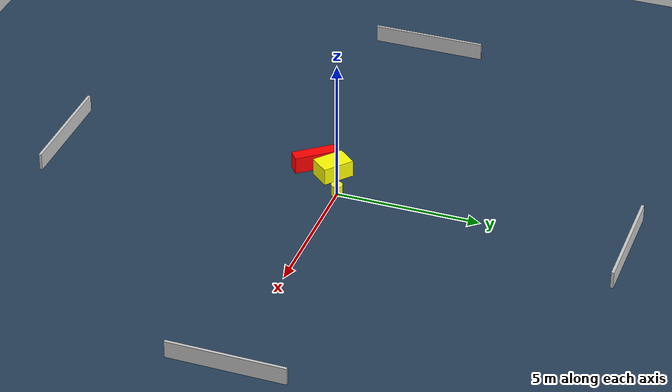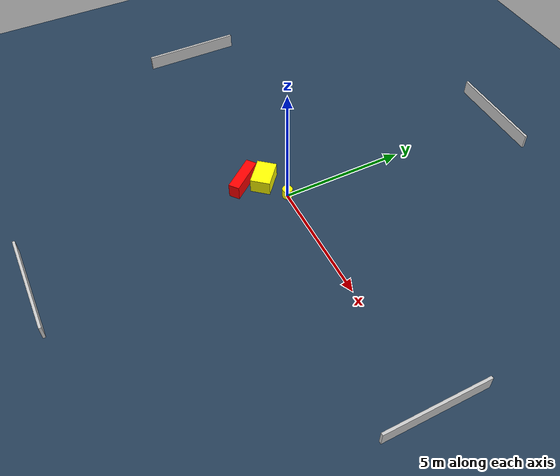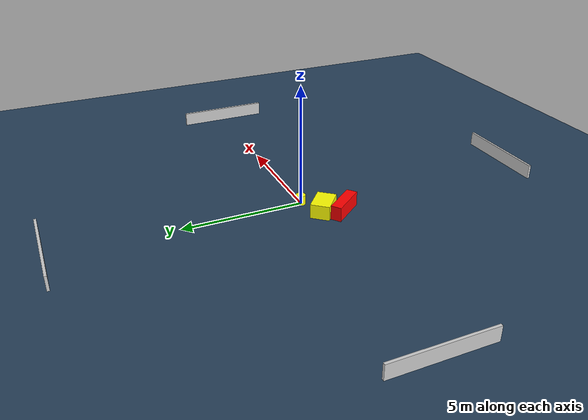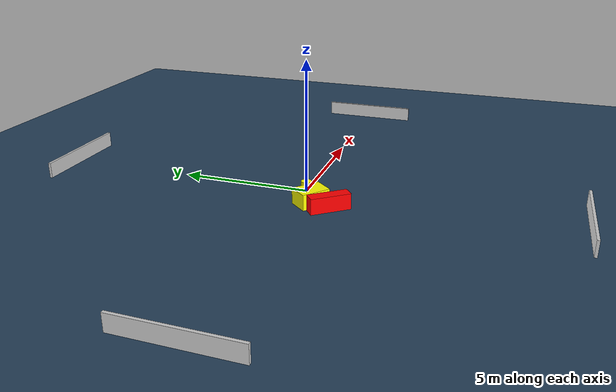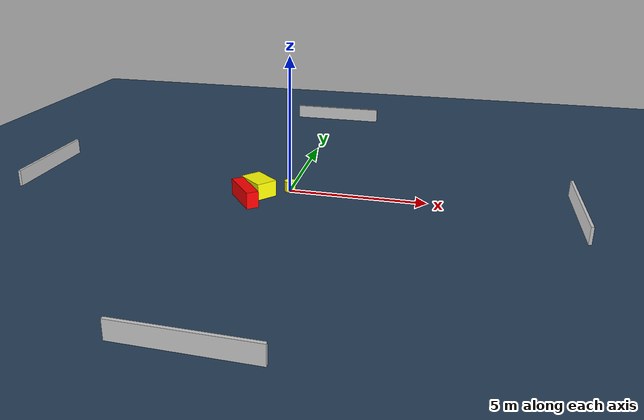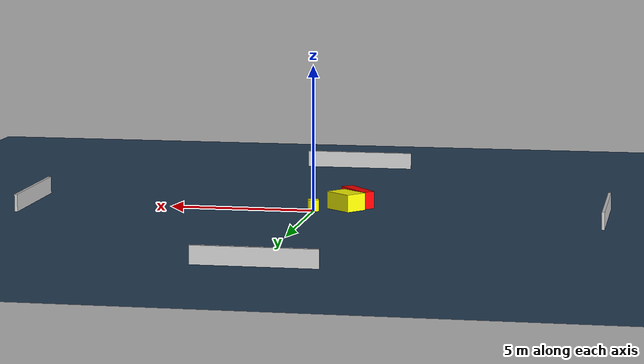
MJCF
<?xml version="1.0" ?>
<mujoco model="generated_environment">
  <option timestep="0.01" integrator="RK4" cone="elliptic"/>
  <default>
    <geom density="1"/>
  </default>
  <asset>
    <texture builtin="gradient" height="3072" name="skybox" rgb1="0.3 0.5 0.7" rgb2="0 0 0" type="skybox" width="512"/>
    <texture builtin="checker" height="300" name="groundplane" rgb1="0.2 0.3 0.4" rgb2="0.1 0.2 0.3" type="2d" width="300"/>
    <material name="groundplane" reflectance="0.2" texrepeat="5 5" texture="groundplane"/>
  </asset>
  <worldbody>
    <light dir="0 0 -1" directional="true" pos="0 0 1.5"/>
    <geom condim="3" friction="0.5 0.005 0.001" material="groundplane" name="floor" pos="0 0 0" size="0 0 0.05" type="plane"/>
    <body name="walls">
      <geom name="wall_1" condim="4" pos="-10.0 0.0 0.3" rgba="0.800000011920929 0.800000011920929 0.800000011920929 1.0" size="0.05 2.0 0.3" type="box"/>
      <geom name="wall_2" condim="4" pos="10.0 0.0 0.3" rgba="0.800000011920929 0.800000011920929 0.800000011920929 1.0" size="0.05 2.0 0.3" type="box"/>
      <geom name="wall_3" condim="4" pos="0.0 -10.0 0.3" rgba="0.800000011920929 0.800000011920929 0.800000011920929 1.0" size="2.0 0.05 0.3" type="box"/>
      <geom name="wall_4" condim="4" pos="0.0 10.0 0.3" rgba="0.800000011920929 0.800000011920929 0.800000011920929 1.0" size="2.0 0.05 0.3" type="box"/>
    </body>
    <body name="robot">
      <joint name="joint_x" type="slide" pos="0 0 0" axis="1 0 0"/>
      <joint name="joint_y" type="slide" pos="0 0 0" axis="0 1 0"/>
      <geom name="robot" type="cylinder" pos="0.0 0.0 0.2" size="0.2 0.2 0.0" mass="5.0" friction="1.0 0.005 0.0001" condim="4" rgba="1.0 1.0 0.0 1.0"/>
    </body>
    <body name="obstacle_1_movable">
      <geom name="obstacle_1_movable" condim="4" pos="-1.049975163847201 -0.5179725014702745 0.3" euler="0 0 319.5858041093012" friction="0.0 0.005 0.001" rgba="1.0 1.0 0.0 1.0" size="0.557596674588801 0.3926602724448285 0.3" type="box" mass="0.1"/>
      <joint type="free"/>
    </body>
    <body name="obstacle_2_static">
      <geom name="obstacle_2_static" condim="4" pos="-1.3338076529725782 -1.2839259040909885 0.3" euler="0 0 128.4182233891581" friction="0.0 0.005 0.001" rgba="1.0 0.0 0.0 1.0" size="0.7603993380108112 0.2194571529382136 0.3" type="box"/>
    </body>
  </worldbody>
  <actuator>
    <motor name="actuator_x" joint="joint_x" gear="1" ctrlrange="-1 1"/>
    <motor name="actuator_y" joint="joint_y" gear="1" ctrlrange="-1 1"/>
  </actuator>
</mujoco>
